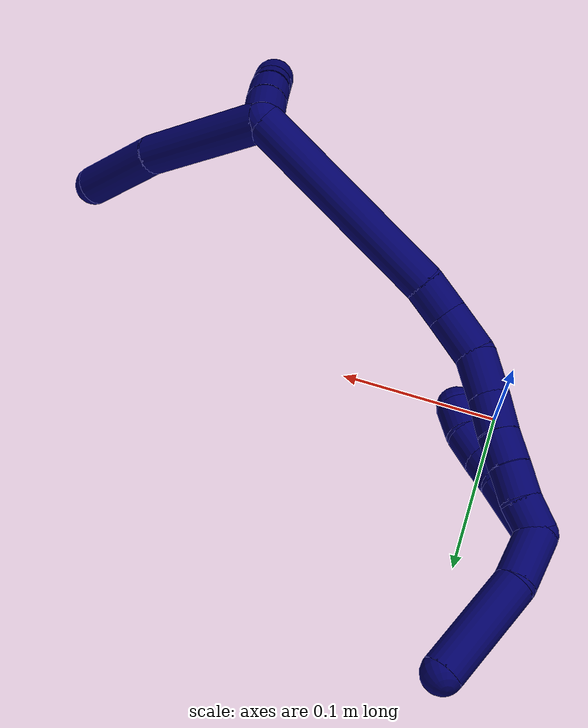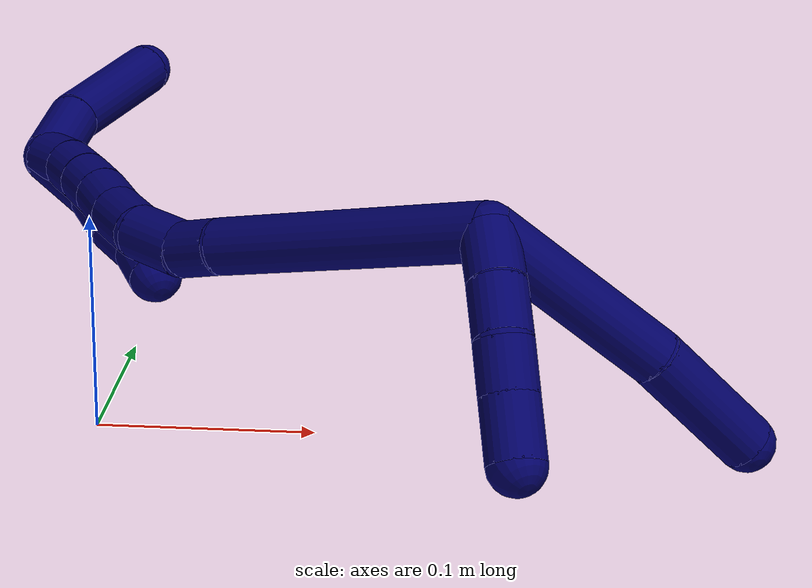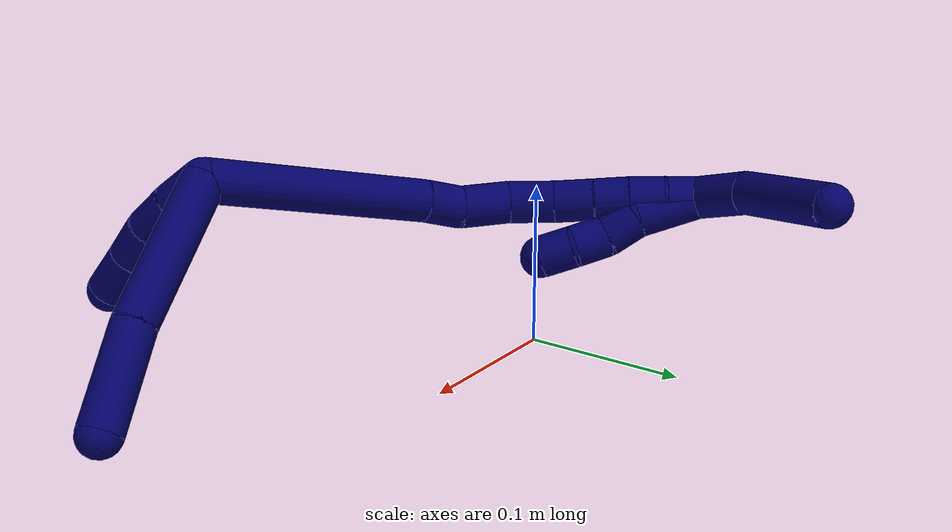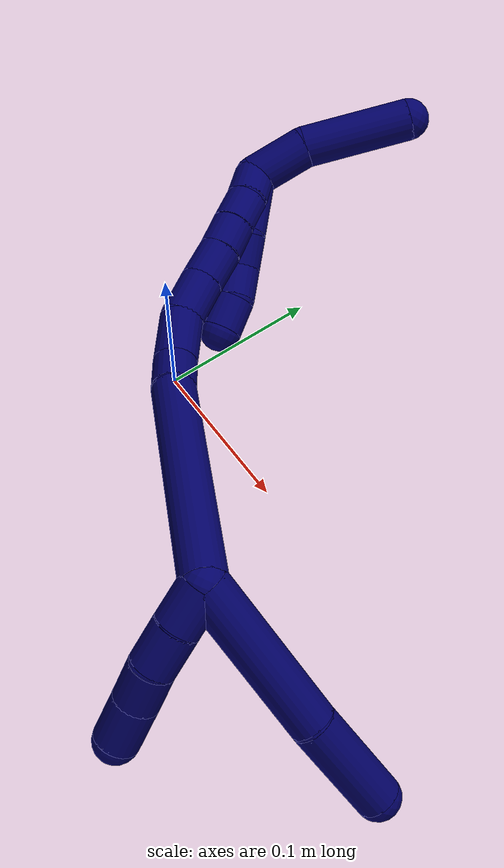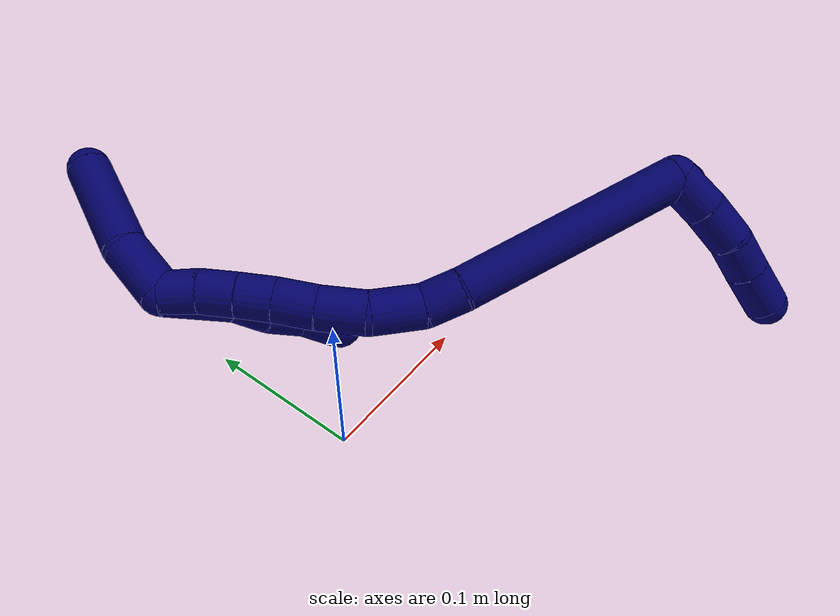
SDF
<sdf version="1.7">
 <world name="default">
  <model name="7">
   <static>0</static>
   <link name="7">
    <collision name="collision-cylinder-e_1_2_8">
     <pose>0.031235 0.02466 -0.021773 -2.2941 0.759494 -1.44873</pose>
     <geometry><cylinder><radius>0.0125</radius><length>0.090725</length></cylinder></geometry>
     <surface>
      <friction><ode><mu>1.16</mu><mu2>1.16</mu2><slip1>0</slip1><slip2>0</slip2></ode></friction>
      <contact><ode><kp>1e+06</kp><kd>1</kd><max_vel>0</max_vel><min_depth>0.001</min_depth></ode></contact>
     </surface>
    </collision>
    <visual name="visual-cylinder-e_1_2_8">
     <pose>0.031235 0.02466 -0.021773 -2.2941 0.759494 -1.44873</pose>
     <geometry><cylinder><radius>0.0125</radius><length>0.090725</length></cylinder></geometry>
     <material><ambient>0.003922 0 0.403922 1</ambient></material>
    </visual>
    <collision name="collision-cylinder-e_2_8_6">
     <pose>0.080809 0.06874 -0.056386 -2.15498 0.667223 -1.14515</pose>
     <geometry><cylinder><radius>0.0125</radius><length>0.059275</length></cylinder></geometry>
     <surface>
      <friction><ode><mu>1.16</mu><mu2>1.16</mu2><slip1>0</slip1><slip2>0</slip2></ode></friction>
      <contact><ode><kp>1e+06</kp><kd>1</kd><max_vel>0</max_vel><min_depth>0.001</min_depth></ode></contact>
     </surface>
    </collision>
    <visual name="visual-cylinder-e_2_8_6">
     <pose>0.080809 0.06874 -0.056386 -2.15498 0.667223 -1.14515</pose>
     <geometry><cylinder><radius>0.0125</radius><length>0.059275</length></cylinder></geometry>
     <material><ambient>0.003922 0 0.403922 1</ambient></material>
    </visual>
    <collision name="collision-cylinder-e_1_2_9">
     <pose>-0.002466 0.001534 -0.012148 -3.01601 -0.198771 2.01643</pose>
     <geometry><cylinder><radius>0.0125</radius><length>0.024981</length></cylinder></geometry>
     <surface>
      <friction><ode><mu>1.16</mu><mu2>1.16</mu2><slip1>0</slip1><slip2>0</slip2></ode></friction>
      <contact><ode><kp>1e+06</kp><kd>1</kd><max_vel>0</max_vel><min_depth>0.001</min_depth></ode></contact>
     </surface>
    </collision>
    <visual name="visual-cylinder-e_1_2_9">
     <pose>-0.002466 0.001534 -0.012148 -3.01601 -0.198771 2.01643</pose>
     <geometry><cylinder><radius>0.0125</radius><length>0.024981</length></cylinder></geometry>
     <material><ambient>0.003922 0 0.403922 1</ambient></material>
    </visual>
    <collision name="collision-cylinder-e_2_9_10">
     <pose>-0.007563 0.005679 -0.036228 -2.92615 -0.212126 1.55516</pose>
     <geometry><cylinder><radius>0.0125</radius><length>0.024989</length></cylinder></geometry>
     <surface>
      <friction><ode><mu>1.16</mu><mu2>1.16</mu2><slip1>0</slip1><slip2>0</slip2></ode></friction>
      <contact><ode><kp>1e+06</kp><kd>1</kd><max_vel>0</max_vel><min_depth>0.001</min_depth></ode></contact>
     </surface>
    </collision>
    <visual name="visual-cylinder-e_2_9_10">
     <pose>-0.007563 0.005679 -0.036228 -2.92615 -0.212126 1.55516</pose>
     <geometry><cylinder><radius>0.0125</radius><length>0.024989</length></cylinder></geometry>
     <material><ambient>0.003922 0 0.403922 1</ambient></material>
    </visual>
    <collision name="collision-cylinder-e_3_10_11">
     <pose>-0.012221 0.012742 -0.058423 -2.73229 -0.179269 0.817285</pose>
     <geometry><cylinder><radius>0.0125</radius><length>0.022737</length></cylinder></geometry>
     <surface>
      <friction><ode><mu>1.16</mu><mu2>1.16</mu2><slip1>0</slip1><slip2>0</slip2></ode></friction>
      <contact><ode><kp>1e+06</kp><kd>1</kd><max_vel>0</max_vel><min_depth>0.001</min_depth></ode></contact>
     </surface>
    </collision>
    <visual name="visual-cylinder-e_3_10_11">
     <pose>-0.012221 0.012742 -0.058423 -2.73229 -0.179269 0.817285</pose>
     <geometry><cylinder><radius>0.0125</radius><length>0.022737</length></cylinder></geometry>
     <material><ambient>0.003922 0 0.403922 1</ambient></material>
    </visual>
    <collision name="collision-cylinder-e_4_11_5">
     <pose>-0.016733 0.02221 -0.081131 -2.75845 -0.183119 0.884278</pose>
     <geometry><cylinder><radius>0.0125</radius><length>0.027293</length></cylinder></geometry>
     <surface>
      <friction><ode><mu>1.16</mu><mu2>1.16</mu2><slip1>0</slip1><slip2>0</slip2></ode></friction>
      <contact><ode><kp>1e+06</kp><kd>1</kd><max_vel>0</max_vel><min_depth>0.001</min_depth></ode></contact>
     </surface>
    </collision>
    <visual name="visual-cylinder-e_4_11_5">
     <pose>-0.016733 0.02221 -0.081131 -2.75845 -0.183119 0.884278</pose>
     <geometry><cylinder><radius>0.0125</radius><length>0.027293</length></cylinder></geometry>
     <material><ambient>0.003922 0 0.403922 1</ambient></material>
    </visual>
    <collision name="collision-cylinder-e_1_2_12">
     <pose>-0.044355 0.034208 0.037715 -0.736672 -0.71663 0.287074</pose>
     <geometry><cylinder><radius>0.0125</radius><length>0.135055</length></cylinder></geometry>
     <surface>
      <friction><ode><mu>1.16</mu><mu2>1.16</mu2><slip1>0</slip1><slip2>0</slip2></ode></friction>
      <contact><ode><kp>1e+06</kp><kd>1</kd><max_vel>0</max_vel><min_depth>0.001</min_depth></ode></contact>
     </surface>
    </collision>
    <visual name="visual-cylinder-e_1_2_12">
     <pose>-0.044355 0.034208 0.037715 -0.736672 -0.71663 0.287074</pose>
     <geometry><cylinder><radius>0.0125</radius><length>0.135055</length></cylinder></geometry>
     <material><ambient>0.003922 0 0.403922 1</ambient></material>
    </visual>
    <collision name="collision-cylinder-e_2_12_13">
     <pose>-0.094982 0.075262 0.082232 -0.788605 -0.576272 0.245408</pose>
     <geometry><cylinder><radius>0.0125</radius><length>0.023021</length></cylinder></geometry>
     <surface>
      <friction><ode><mu>1.16</mu><mu2>1.16</mu2><slip1>0</slip1><slip2>0</slip2></ode></friction>
      <contact><ode><kp>1e+06</kp><kd>1</kd><max_vel>0</max_vel><min_depth>0.001</min_depth></ode></contact>
     </surface>
    </collision>
    <visual name="visual-cylinder-e_2_12_13">
     <pose>-0.094982 0.075262 0.082232 -0.788605 -0.576272 0.245408</pose>
     <geometry><cylinder><radius>0.0125</radius><length>0.023021</length></cylinder></geometry>
     <material><ambient>0.003922 0 0.403922 1</ambient></material>
    </visual>
    <collision name="collision-cylinder-e_3_13_14">
     <pose>-0.107883 0.087818 0.101129 -0.441137 -0.460128 0.104931</pose>
     <geometry><cylinder><radius>0.0125</radius><length>0.029854</length></cylinder></geometry>
     <surface>
      <friction><ode><mu>1.16</mu><mu2>1.16</mu2><slip1>0</slip1><slip2>0</slip2></ode></friction>
      <contact><ode><kp>1e+06</kp><kd>1</kd><max_vel>0</max_vel><min_depth>0.001</min_depth></ode></contact>
     </surface>
    </collision>
    <visual name="visual-cylinder-e_3_13_14">
     <pose>-0.107883 0.087818 0.101129 -0.441137 -0.460128 0.104931</pose>
     <geometry><cylinder><radius>0.0125</radius><length>0.029854</length></cylinder></geometry>
     <material><ambient>0.003922 0 0.403922 1</ambient></material>
    </visual>
    <collision name="collision-cylinder-e_4_14_15">
     <pose>-0.116548 0.099797 0.125205 -0.481994 -0.149497 0.036807</pose>
     <geometry><cylinder><radius>0.0125</radius><length>0.02735</length></cylinder></geometry>
     <surface>
      <friction><ode><mu>1.16</mu><mu2>1.16</mu2><slip1>0</slip1><slip2>0</slip2></ode></friction>
      <contact><ode><kp>1e+06</kp><kd>1</kd><max_vel>0</max_vel><min_depth>0.001</min_depth></ode></contact>
     </surface>
    </collision>
    <visual name="visual-cylinder-e_4_14_15">
     <pose>-0.116548 0.099797 0.125205 -0.481994 -0.149497 0.036807</pose>
     <geometry><cylinder><radius>0.0125</radius><length>0.02735</length></cylinder></geometry>
     <material><ambient>0.003922 0 0.403922 1</ambient></material>
    </visual>
    <collision name="collision-cylinder-e_5_15_16">
     <pose>-0.119594 0.110867 0.147756 -0.426448 -0.086683 0.01878</pose>
     <geometry><cylinder><radius>0.0125</radius><length>0.023304</length></cylinder></geometry>
     <surface>
      <friction><ode><mu>1.16</mu><mu2>1.16</mu2><slip1>0</slip1><slip2>0</slip2></ode></friction>
      <contact><ode><kp>1e+06</kp><kd>1</kd><max_vel>0</max_vel><min_depth>0.001</min_depth></ode></contact>
     </surface>
    </collision>
    <visual name="visual-cylinder-e_5_15_16">
     <pose>-0.119594 0.110867 0.147756 -0.426448 -0.086683 0.01878</pose>
     <geometry><cylinder><radius>0.0125</radius><length>0.023304</length></cylinder></geometry>
     <material><ambient>0.003922 0 0.403922 1</ambient></material>
    </visual>
    <collision name="collision-cylinder-e_6_16_17">
     <pose>-0.12221 0.119845 0.167357 -0.433044 -0.160123 0.035294</pose>
     <geometry><cylinder><radius>0.0125</radius><length>0.020159</length></cylinder></geometry>
     <surface>
      <friction><ode><mu>1.16</mu><mu2>1.16</mu2><slip1>0</slip1><slip2>0</slip2></ode></friction>
      <contact><ode><kp>1e+06</kp><kd>1</kd><max_vel>0</max_vel><min_depth>0.001</min_depth></ode></contact>
     </surface>
    </collision>
    <visual name="visual-cylinder-e_6_16_17">
     <pose>-0.12221 0.119845 0.167357 -0.433044 -0.160123 0.035294</pose>
     <geometry><cylinder><radius>0.0125</radius><length>0.020159</length></cylinder></geometry>
     <material><ambient>0.003922 0 0.403922 1</ambient></material>
    </visual>
    <collision name="collision-cylinder-e_7_17_18">
     <pose>-0.125455 0.128772 0.185436 -0.483583 -0.159007 0.039291</pose>
     <geometry><cylinder><radius>0.0125</radius><length>0.020698</length></cylinder></geometry>
     <surface>
      <friction><ode><mu>1.16</mu><mu2>1.16</mu2><slip1>0</slip1><slip2>0</slip2></ode></friction>
      <contact><ode><kp>1e+06</kp><kd>1</kd><max_vel>0</max_vel><min_depth>0.001</min_depth></ode></contact>
     </surface>
    </collision>
    <visual name="visual-cylinder-e_7_17_18">
     <pose>-0.125455 0.128772 0.185436 -0.483583 -0.159007 0.039291</pose>
     <geometry><cylinder><radius>0.0125</radius><length>0.020698</length></cylinder></geometry>
     <material><ambient>0.003922 0 0.403922 1</ambient></material>
    </visual>
    <collision name="collision-cylinder-e_8_18_1">
     <pose>-0.130263 0.138487 0.202908 -0.532451 -0.313442 0.086129</pose>
     <geometry><cylinder><radius>0.0125</radius><length>0.020558</length></cylinder></geometry>
     <surface>
      <friction><ode><mu>1.16</mu><mu2>1.16</mu2><slip1>0</slip1><slip2>0</slip2></ode></friction>
      <contact><ode><kp>1e+06</kp><kd>1</kd><max_vel>0</max_vel><min_depth>0.001</min_depth></ode></contact>
     </surface>
    </collision>
    <visual name="visual-cylinder-e_8_18_1">
     <pose>-0.130263 0.138487 0.202908 -0.532451 -0.313442 0.086129</pose>
     <geometry><cylinder><radius>0.0125</radius><length>0.020558</length></cylinder></geometry>
     <material><ambient>0.003922 0 0.403922 1</ambient></material>
    </visual>
    <collision name="collision-cylinder-e_1_1_19">
     <pose>-0.126786 0.139636 0.193428 2.93167 0.348297 2.0625</pose>
     <geometry><cylinder><radius>0.0125</radius><length>0.038951</length></cylinder></geometry>
     <surface>
      <friction><ode><mu>1.16</mu><mu2>1.16</mu2><slip1>0</slip1><slip2>0</slip2></ode></friction>
      <contact><ode><kp>1e+06</kp><kd>1</kd><max_vel>0</max_vel><min_depth>0.001</min_depth></ode></contact>
     </surface>
    </collision>
    <visual name="visual-cylinder-e_1_1_19">
     <pose>-0.126786 0.139636 0.193428 2.93167 0.348297 2.0625</pose>
     <geometry><cylinder><radius>0.0125</radius><length>0.038951</length></cylinder></geometry>
     <material><ambient>0.003922 0 0.403922 1</ambient></material>
    </visual>
    <collision name="collision-cylinder-e_2_19_20">
     <pose>-0.117753 0.136655 0.165539 -3.05832 0.233825 -2.45985</pose>
     <geometry><cylinder><radius>0.0125</radius><length>0.020599</length></cylinder></geometry>
     <surface>
      <friction><ode><mu>1.16</mu><mu2>1.16</mu2><slip1>0</slip1><slip2>0</slip2></ode></friction>
      <contact><ode><kp>1e+06</kp><kd>1</kd><max_vel>0</max_vel><min_depth>0.001</min_depth></ode></contact>
     </surface>
    </collision>
    <visual name="visual-cylinder-e_2_19_20">
     <pose>-0.117753 0.136655 0.165539 -3.05832 0.233825 -2.45985</pose>
     <geometry><cylinder><radius>0.0125</radius><length>0.020599</length></cylinder></geometry>
     <material><ambient>0.003922 0 0.403922 1</ambient></material>
    </visual>
    <collision name="collision-cylinder-e_3_20_21">
     <pose>-0.111947 0.135656 0.146174 2.94871 0.343576 2.1243</pose>
     <geometry><cylinder><radius>0.0125</radius><length>0.020303</length></cylinder></geometry>
     <surface>
      <friction><ode><mu>1.16</mu><mu2>1.16</mu2><slip1>0</slip1><slip2>0</slip2></ode></friction>
      <contact><ode><kp>1e+06</kp><kd>1</kd><max_vel>0</max_vel><min_depth>0.001</min_depth></ode></contact>
     </surface>
    </collision>
    <visual name="visual-cylinder-e_3_20_21">
     <pose>-0.111947 0.135656 0.146174 2.94871 0.343576 2.1243</pose>
     <geometry><cylinder><radius>0.0125</radius><length>0.020303</length></cylinder></geometry>
     <material><ambient>0.003922 0 0.403922 1</ambient></material>
    </visual>
    <collision name="collision-cylinder-e_4_21_4">
     <pose>-0.107509 0.132137 0.126914 2.97251 0.101251 1.07778</pose>
     <geometry><cylinder><radius>0.0125</radius><length>0.020147</length></cylinder></geometry>
     <surface>
      <friction><ode><mu>1.16</mu><mu2>1.16</mu2><slip1>0</slip1><slip2>0</slip2></ode></friction>
      <contact><ode><kp>1e+06</kp><kd>1</kd><max_vel>0</max_vel><min_depth>0.001</min_depth></ode></contact>
     </surface>
    </collision>
    <visual name="visual-cylinder-e_4_21_4">
     <pose>-0.107509 0.132137 0.126914 2.97251 0.101251 1.07778</pose>
     <geometry><cylinder><radius>0.0125</radius><length>0.020147</length></cylinder></geometry>
     <material><ambient>0.003922 0 0.403922 1</ambient></material>
    </visual>
    <collision name="collision-cylinder-e_1_1_22">
     <pose>-0.124106 0.147209 0.225552 -0.258416 0.565144 -0.075413</pose>
     <geometry><cylinder><radius>0.0125</radius><length>0.034833</length></cylinder></geometry>
     <surface>
      <friction><ode><mu>1.16</mu><mu2>1.16</mu2><slip1>0</slip1><slip2>0</slip2></ode></friction>
      <contact><ode><kp>1e+06</kp><kd>1</kd><max_vel>0</max_vel><min_depth>0.001</min_depth></ode></contact>
     </surface>
    </collision>
    <visual name="visual-cylinder-e_1_1_22">
     <pose>-0.124106 0.147209 0.225552 -0.258416 0.565144 -0.075413</pose>
     <geometry><cylinder><radius>0.0125</radius><length>0.034833</length></cylinder></geometry>
     <material><ambient>0.003922 0 0.403922 1</ambient></material>
    </visual>
    <collision name="collision-cylinder-e_2_22_3">
     <pose>-0.091348 0.160571 0.260279 -0.437944 0.802477 -0.188269</pose>
     <geometry><cylinder><radius>0.0125</radius><length>0.065167</length></cylinder></geometry>
     <surface>
      <friction><ode><mu>1.16</mu><mu2>1.16</mu2><slip1>0</slip1><slip2>0</slip2></ode></friction>
      <contact><ode><kp>1e+06</kp><kd>1</kd><max_vel>0</max_vel><min_depth>0.001</min_depth></ode></contact>
     </surface>
    </collision>
    <visual name="visual-cylinder-e_2_22_3">
     <pose>-0.091348 0.160571 0.260279 -0.437944 0.802477 -0.188269</pose>
     <geometry><cylinder><radius>0.0125</radius><length>0.065167</length></cylinder></geometry>
     <material><ambient>0.003922 0 0.403922 1</ambient></material>
    </visual>
    <collision name="collision-sphere-3">
     <pose>-0.067918 0.170173 0.280785 0 -0 0</pose>
     <geometry><sphere><radius>0.0125</radius></sphere></geometry>
     <surface>
      <friction><ode><mu>1.16</mu><mu2>1.16</mu2><slip1>0</slip1><slip2>0</slip2></ode></friction>
      <contact><ode><kp>1e+06</kp><kd>1</kd><max_vel>0</max_vel><min_depth>0.001</min_depth></ode></contact>
     </surface>
    </collision>
    <visual name="visual-sphere-3">
     <pose>-0.067918 0.170173 0.280785 0 -0 0</pose>
     <geometry><sphere><radius>0.0125</radius></sphere></geometry>
     <material><ambient>0.003922 0 0.403922 1</ambient></material>
    </visual>
    <collision name="collision-sphere-22">
     <pose>-0.114778 0.150968 0.239773 0 -0 0</pose>
     <geometry><sphere><radius>0.0125</radius></sphere></geometry>
     <surface>
      <friction><ode><mu>1.16</mu><mu2>1.16</mu2><slip1>0</slip1><slip2>0</slip2></ode></friction>
      <contact><ode><kp>1e+06</kp><kd>1</kd><max_vel>0</max_vel><min_depth>0.001</min_depth></ode></contact>
     </surface>
    </collision>
    <visual name="visual-sphere-22">
     <pose>-0.114778 0.150968 0.239773 0 -0 0</pose>
     <geometry><sphere><radius>0.0125</radius></sphere></geometry>
     <material><ambient>0.003922 0 0.403922 1</ambient></material>
    </visual>
    <collision name="collision-sphere-4">
     <pose>-0.106491 0.130451 0.117035 0 -0 0</pose>
     <geometry><sphere><radius>0.0125</radius></sphere></geometry>
     <surface>
      <friction><ode><mu>1.16</mu><mu2>1.16</mu2><slip1>0</slip1><slip2>0</slip2></ode></friction>
      <contact><ode><kp>1e+06</kp><kd>1</kd><max_vel>0</max_vel><min_depth>0.001</min_depth></ode></contact>
     </surface>
    </collision>
    <visual name="visual-sphere-4">
     <pose>-0.106491 0.130451 0.117035 0 -0 0</pose>
     <geometry><sphere><radius>0.0125</radius></sphere></geometry>
     <material><ambient>0.003922 0 0.403922 1</ambient></material>
    </visual>
    <collision name="collision-sphere-21">
     <pose>-0.108527 0.133824 0.136793 0 -0 0</pose>
     <geometry><sphere><radius>0.0125</radius></sphere></geometry>
     <surface>
      <friction><ode><mu>1.16</mu><mu2>1.16</mu2><slip1>0</slip1><slip2>0</slip2></ode></friction>
      <contact><ode><kp>1e+06</kp><kd>1</kd><max_vel>0</max_vel><min_depth>0.001</min_depth></ode></contact>
     </surface>
    </collision>
    <visual name="visual-sphere-21">
     <pose>-0.108527 0.133824 0.136793 0 -0 0</pose>
     <geometry><sphere><radius>0.0125</radius></sphere></geometry>
     <material><ambient>0.003922 0 0.403922 1</ambient></material>
    </visual>
    <collision name="collision-sphere-20">
     <pose>-0.115366 0.137488 0.155555 0 -0 0</pose>
     <geometry><sphere><radius>0.0125</radius></sphere></geometry>
     <surface>
      <friction><ode><mu>1.16</mu><mu2>1.16</mu2><slip1>0</slip1><slip2>0</slip2></ode></friction>
      <contact><ode><kp>1e+06</kp><kd>1</kd><max_vel>0</max_vel><min_depth>0.001</min_depth></ode></contact>
     </surface>
    </collision>
    <visual name="visual-sphere-20">
     <pose>-0.115366 0.137488 0.155555 0 -0 0</pose>
     <geometry><sphere><radius>0.0125</radius></sphere></geometry>
     <material><ambient>0.003922 0 0.403922 1</ambient></material>
    </visual>
    <collision name="collision-sphere-11">
     <pose>-0.014248 0.017193 -0.068685 0 -0 0</pose>
     <geometry><sphere><radius>0.0125</radius></sphere></geometry>
     <surface>
      <friction><ode><mu>1.16</mu><mu2>1.16</mu2><slip1>0</slip1><slip2>0</slip2></ode></friction>
      <contact><ode><kp>1e+06</kp><kd>1</kd><max_vel>0</max_vel><min_depth>0.001</min_depth></ode></contact>
     </surface>
    </collision>
    <visual name="visual-sphere-11">
     <pose>-0.014248 0.017193 -0.068685 0 -0 0</pose>
     <geometry><sphere><radius>0.0125</radius></sphere></geometry>
     <material><ambient>0.003922 0 0.403922 1</ambient></material>
    </visual>
    <collision name="collision-sphere-10">
     <pose>-0.010194 0.00829 -0.04816 0 -0 0</pose>
     <geometry><sphere><radius>0.0125</radius></sphere></geometry>
     <surface>
      <friction><ode><mu>1.16</mu><mu2>1.16</mu2><slip1>0</slip1><slip2>0</slip2></ode></friction>
      <contact><ode><kp>1e+06</kp><kd>1</kd><max_vel>0</max_vel><min_depth>0.001</min_depth></ode></contact>
     </surface>
    </collision>
    <visual name="visual-sphere-10">
     <pose>-0.010194 0.00829 -0.04816 0 -0 0</pose>
     <geometry><sphere><radius>0.0125</radius></sphere></geometry>
     <material><ambient>0.003922 0 0.403922 1</ambient></material>
    </visual>
    <collision name="collision-sphere-6">
     <pose>0.099149 0.088161 -0.069226 0 -0 0</pose>
     <geometry><sphere><radius>0.0125</radius></sphere></geometry>
     <surface>
      <friction><ode><mu>1.16</mu><mu2>1.16</mu2><slip1>0</slip1><slip2>0</slip2></ode></friction>
      <contact><ode><kp>1e+06</kp><kd>1</kd><max_vel>0</max_vel><min_depth>0.001</min_depth></ode></contact>
     </surface>
    </collision>
    <visual name="visual-sphere-6">
     <pose>0.099149 0.088161 -0.069226 0 -0 0</pose>
     <geometry><sphere><radius>0.0125</radius></sphere></geometry>
     <material><ambient>0.003922 0 0.403922 1</ambient></material>
    </visual>
    <collision name="collision-sphere-9">
     <pose>-0.004933 0.003067 -0.024296 0 -0 0</pose>
     <geometry><sphere><radius>0.0125</radius></sphere></geometry>
     <surface>
      <friction><ode><mu>1.16</mu><mu2>1.16</mu2><slip1>0</slip1><slip2>0</slip2></ode></friction>
      <contact><ode><kp>1e+06</kp><kd>1</kd><max_vel>0</max_vel><min_depth>0.001</min_depth></ode></contact>
     </surface>
    </collision>
    <visual name="visual-sphere-9">
     <pose>-0.004933 0.003067 -0.024296 0 -0 0</pose>
     <geometry><sphere><radius>0.0125</radius></sphere></geometry>
     <material><ambient>0.003922 0 0.403922 1</ambient></material>
    </visual>
    <collision name="collision-sphere-2">
     <geometry><sphere><radius>0.0125</radius></sphere></geometry>
     <surface>
      <friction><ode><mu>1.16</mu><mu2>1.16</mu2><slip1>0</slip1><slip2>0</slip2></ode></friction>
      <contact><ode><kp>1e+06</kp><kd>1</kd><max_vel>0</max_vel><min_depth>0.001</min_depth></ode></contact>
     </surface>
    </collision>
    <visual name="visual-sphere-2">
     <geometry><sphere><radius>0.0125</radius></sphere></geometry>
     <material><ambient>0.003922 0 0.403922 1</ambient></material>
    </visual>
    <collision name="collision-sphere-19">
     <pose>-0.120139 0.135821 0.175524 0 -0 0</pose>
     <geometry><sphere><radius>0.0125</radius></sphere></geometry>
     <surface>
      <friction><ode><mu>1.16</mu><mu2>1.16</mu2><slip1>0</slip1><slip2>0</slip2></ode></friction>
      <contact><ode><kp>1e+06</kp><kd>1</kd><max_vel>0</max_vel><min_depth>0.001</min_depth></ode></contact>
     </surface>
    </collision>
    <visual name="visual-sphere-19">
     <pose>-0.120139 0.135821 0.175524 0 -0 0</pose>
     <geometry><sphere><radius>0.0125</radius></sphere></geometry>
     <material><ambient>0.003922 0 0.403922 1</ambient></material>
    </visual>
    <collision name="collision-sphere-8">
     <pose>0.062469 0.04932 -0.043546 0 -0 0</pose>
     <geometry><sphere><radius>0.0125</radius></sphere></geometry>
     <surface>
      <friction><ode><mu>1.16</mu><mu2>1.16</mu2><slip1>0</slip1><slip2>0</slip2></ode></friction>
      <contact><ode><kp>1e+06</kp><kd>1</kd><max_vel>0</max_vel><min_depth>0.001</min_depth></ode></contact>
     </surface>
    </collision>
    <visual name="visual-sphere-8">
     <pose>0.062469 0.04932 -0.043546 0 -0 0</pose>
     <geometry><sphere><radius>0.0125</radius></sphere></geometry>
     <material><ambient>0.003922 0 0.403922 1</ambient></material>
    </visual>
    <collision name="collision-sphere-5">
     <pose>-0.019218 0.027226 -0.093576 0 -0 0</pose>
     <geometry><sphere><radius>0.0125</radius></sphere></geometry>
     <surface>
      <friction><ode><mu>1.16</mu><mu2>1.16</mu2><slip1>0</slip1><slip2>0</slip2></ode></friction>
      <contact><ode><kp>1e+06</kp><kd>1</kd><max_vel>0</max_vel><min_depth>0.001</min_depth></ode></contact>
     </surface>
    </collision>
    <visual name="visual-sphere-5">
     <pose>-0.019218 0.027226 -0.093576 0 -0 0</pose>
     <geometry><sphere><radius>0.0125</radius></sphere></geometry>
     <material><ambient>0.003922 0 0.403922 1</ambient></material>
    </visual>
    <collision name="collision-sphere-12">
     <pose>-0.08871 0.068415 0.07543 0 -0 0</pose>
     <geometry><sphere><radius>0.0125</radius></sphere></geometry>
     <surface>
      <friction><ode><mu>1.16</mu><mu2>1.16</mu2><slip1>0</slip1><slip2>0</slip2></ode></friction>
      <contact><ode><kp>1e+06</kp><kd>1</kd><max_vel>0</max_vel><min_depth>0.001</min_depth></ode></contact>
     </surface>
    </collision>
    <visual name="visual-sphere-12">
     <pose>-0.08871 0.068415 0.07543 0 -0 0</pose>
     <geometry><sphere><radius>0.0125</radius></sphere></geometry>
     <material><ambient>0.003922 0 0.403922 1</ambient></material>
    </visual>
    <collision name="collision-sphere-13">
     <pose>-0.101254 0.082108 0.089035 0 -0 0</pose>
     <geometry><sphere><radius>0.0125</radius></sphere></geometry>
     <surface>
      <friction><ode><mu>1.16</mu><mu2>1.16</mu2><slip1>0</slip1><slip2>0</slip2></ode></friction>
      <contact><ode><kp>1e+06</kp><kd>1</kd><max_vel>0</max_vel><min_depth>0.001</min_depth></ode></contact>
     </surface>
    </collision>
    <visual name="visual-sphere-13">
     <pose>-0.101254 0.082108 0.089035 0 -0 0</pose>
     <geometry><sphere><radius>0.0125</radius></sphere></geometry>
     <material><ambient>0.003922 0 0.403922 1</ambient></material>
    </visual>
    <collision name="collision-sphere-14">
     <pose>-0.114511 0.093529 0.113223 0 -0 0</pose>
     <geometry><sphere><radius>0.0125</radius></sphere></geometry>
     <surface>
      <friction><ode><mu>1.16</mu><mu2>1.16</mu2><slip1>0</slip1><slip2>0</slip2></ode></friction>
      <contact><ode><kp>1e+06</kp><kd>1</kd><max_vel>0</max_vel><min_depth>0.001</min_depth></ode></contact>
     </surface>
    </collision>
    <visual name="visual-sphere-14">
     <pose>-0.114511 0.093529 0.113223 0 -0 0</pose>
     <geometry><sphere><radius>0.0125</radius></sphere></geometry>
     <material><ambient>0.003922 0 0.403922 1</ambient></material>
    </visual>
    <collision name="collision-sphere-15">
     <pose>-0.118585 0.106066 0.137187 0 -0 0</pose>
     <geometry><sphere><radius>0.0125</radius></sphere></geometry>
     <surface>
      <friction><ode><mu>1.16</mu><mu2>1.16</mu2><slip1>0</slip1><slip2>0</slip2></ode></friction>
      <contact><ode><kp>1e+06</kp><kd>1</kd><max_vel>0</max_vel><min_depth>0.001</min_depth></ode></contact>
     </surface>
    </collision>
    <visual name="visual-sphere-15">
     <pose>-0.118585 0.106066 0.137187 0 -0 0</pose>
     <geometry><sphere><radius>0.0125</radius></sphere></geometry>
     <material><ambient>0.003922 0 0.403922 1</ambient></material>
    </visual>
    <collision name="collision-sphere-16">
     <pose>-0.120603 0.115669 0.158325 0 -0 0</pose>
     <geometry><sphere><radius>0.0125</radius></sphere></geometry>
     <surface>
      <friction><ode><mu>1.16</mu><mu2>1.16</mu2><slip1>0</slip1><slip2>0</slip2></ode></friction>
      <contact><ode><kp>1e+06</kp><kd>1</kd><max_vel>0</max_vel><min_depth>0.001</min_depth></ode></contact>
     </surface>
    </collision>
    <visual name="visual-sphere-16">
     <pose>-0.120603 0.115669 0.158325 0 -0 0</pose>
     <geometry><sphere><radius>0.0125</radius></sphere></geometry>
     <material><ambient>0.003922 0 0.403922 1</ambient></material>
    </visual>
    <collision name="collision-sphere-17">
     <pose>-0.123817 0.12402 0.176389 0 -0 0</pose>
     <geometry><sphere><radius>0.0125</radius></sphere></geometry>
     <surface>
      <friction><ode><mu>1.16</mu><mu2>1.16</mu2><slip1>0</slip1><slip2>0</slip2></ode></friction>
      <contact><ode><kp>1e+06</kp><kd>1</kd><max_vel>0</max_vel><min_depth>0.001</min_depth></ode></contact>
     </surface>
    </collision>
    <visual name="visual-sphere-17">
     <pose>-0.123817 0.12402 0.176389 0 -0 0</pose>
     <geometry><sphere><radius>0.0125</radius></sphere></geometry>
     <material><ambient>0.003922 0 0.403922 1</ambient></material>
    </visual>
    <collision name="collision-sphere-18">
     <pose>-0.127094 0.133523 0.194483 0 -0 0</pose>
     <geometry><sphere><radius>0.0125</radius></sphere></geometry>
     <surface>
      <friction><ode><mu>1.16</mu><mu2>1.16</mu2><slip1>0</slip1><slip2>0</slip2></ode></friction>
      <contact><ode><kp>1e+06</kp><kd>1</kd><max_vel>0</max_vel><min_depth>0.001</min_depth></ode></contact>
     </surface>
    </collision>
    <visual name="visual-sphere-18">
     <pose>-0.127094 0.133523 0.194483 0 -0 0</pose>
     <geometry><sphere><radius>0.0125</radius></sphere></geometry>
     <material><ambient>0.003922 0 0.403922 1</ambient></material>
    </visual>
    <collision name="collision-sphere-1">
     <pose>-0.133433 0.143451 0.211332 0 -0 0</pose>
     <geometry><sphere><radius>0.0125</radius></sphere></geometry>
     <surface>
      <friction><ode><mu>1.16</mu><mu2>1.16</mu2><slip1>0</slip1><slip2>0</slip2></ode></friction>
      <contact><ode><kp>1e+06</kp><kd>1</kd><max_vel>0</max_vel><min_depth>0.001</min_depth></ode></contact>
     </surface>
    </collision>
    <visual name="visual-sphere-1">
     <pose>-0.133433 0.143451 0.211332 0 -0 0</pose>
     <geometry><sphere><radius>0.0125</radius></sphere></geometry>
     <material><ambient>0.003922 0 0.403922 1</ambient></material>
    </visual>
    <inertial>
     <pose>-0.054068 0.078488 0.0793 0 -0 0</pose>
     <mass>0.75</mass>
     <inertia>
      <ixx>0.000196</ixx>
      <ixy>0</ixy>
      <ixz>0</ixz>
      <iyy>0.000271</iyy>
      <iyz>0</iyz>
      <izz>-0.000107</izz>
     </inertia>
    </inertial>
   </link>
   <pose>0.181428 -0.095998 0.130931 -1.0401 -0.108695 0.391823</pose>
  </model>
 </world>
</sdf>
